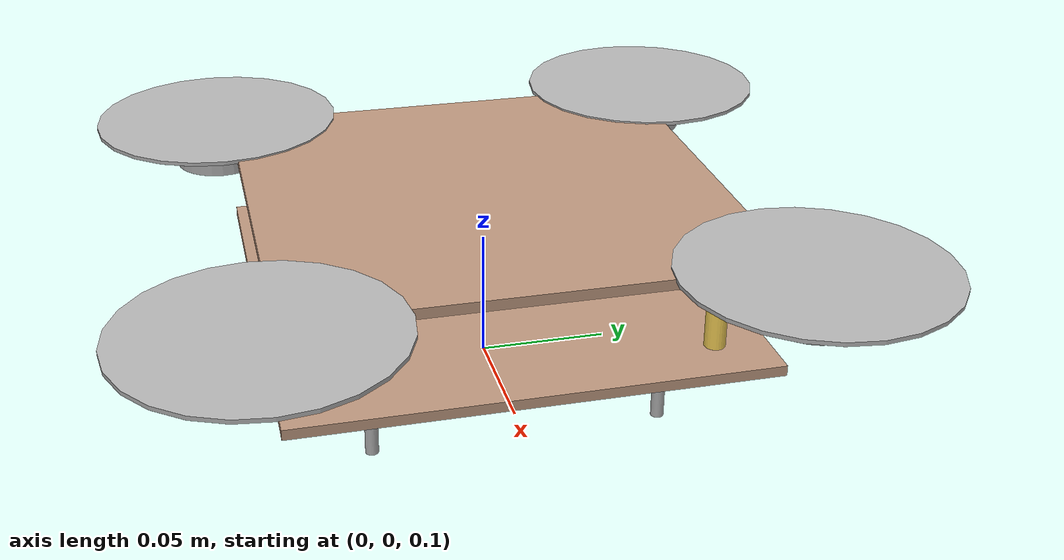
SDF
<?xml version="1.0" ?>
<sdf version="1.9">
  <model name="rex_quadcopter">
    <static>false</static>

    <!-- Main body link -->
    <link name="base_link">
      <pose>0 0 0.15 0 0 0</pose>

      <inertial>
        <mass>0.3</mass>
        <inertia>
          <ixx>0.001</ixx>
          <iyy>0.001</iyy>
          <izz>0.002</izz>
          <ixy>0</ixy>
          <ixz>0</ixz>
          <iyz>0</iyz>
        </inertia>
      </inertial>

      <!-- Disable gravity on the link (re-enable when you add rotors) -->
      <gravity>false</gravity>

      <!-- Simple collision box -->
      <collision name="body_collision">
        <geometry>
          <box>
            <size>0.15 0.15 0.05</size>
          </box>
        </geometry>
      </collision>

      <!-- ===================== FRAME (dual plates) ===================== -->
      <visual name="frame_top">
        <pose>0 0 0.020 0 0 0</pose>
        <geometry><box><size>0.18 0.18 0.004</size></box></geometry>
        <material>
          <ambient>0.65 0.55 0.45 1</ambient>
          <diffuse>0.75 0.60 0.50 1</diffuse>
          <specular>0.2 0.2 0.2 1</specular>
        </material>
      </visual>

      <visual name="frame_bottom">
        <pose>0 0 -0.020 0 0 0</pose>
        <geometry><box><size>0.18 0.18 0.004</size></box></geometry>
        <material>
          <ambient>0.65 0.55 0.45 1</ambient>
          <diffuse>0.75 0.60 0.50 1</diffuse>
          <specular>0.2 0.2 0.2 1</specular>
        </material>
      </visual>

      <!-- ===================== GOLD STANDOFFS ===================== -->
      <visual name="standoff_fr">
        <pose> 0.07  0.07 0 0 0 0</pose>
        <geometry><cylinder><radius>0.004</radius><length>0.040</length></cylinder></geometry>
        <material><ambient>0.9 0.8 0.3 1</ambient><diffuse>1.0 0.85 0.35 1</diffuse></material>
      </visual>
      <visual name="standoff_fl">
        <pose>-0.07  0.07 0 0 0 0</pose>
        <geometry><cylinder><radius>0.004</radius><length>0.040</length></cylinder></geometry>
        <material><ambient>0.9 0.8 0.3 1</ambient><diffuse>1.0 0.85 0.35 1</diffuse></material>
      </visual>
      <visual name="standoff_br">
        <pose> 0.07 -0.07 0 0 0 0</pose>
        <geometry><cylinder><radius>0.004</radius><length>0.040</length></cylinder></geometry>
        <material><ambient>0.9 0.8 0.3 1</ambient><diffuse>1.0 0.85 0.35 1</diffuse></material>
      </visual>
      <visual name="standoff_bl">
        <pose>-0.07 -0.07 0 0 0 0</pose>
        <geometry><cylinder><radius>0.004</radius><length>0.040</length></cylinder></geometry>
      </visual>

      <!-- ===================== THIN GOLD LEGS / PINS ===================== -->
      <visual name="leg_fr">
        <pose> 0.055  0.055 -0.040 0 0 0</pose>
        <geometry><cylinder><radius>0.0025</radius><length>0.030</length></cylinder></geometry>
      </visual>
      <visual name="leg_fl">
        <pose>-0.055  0.055 -0.040 0 0 0</pose>
        <geometry><cylinder><radius>0.0025</radius><length>0.030</length></cylinder></geometry>
      </visual>
      <visual name="leg_br">
        <pose> 0.055 -0.055 -0.040 0 0 0</pose>
        <geometry><cylinder><radius>0.0025</radius><length>0.030</length></cylinder></geometry>
      </visual>
      <visual name="leg_bl">
        <pose>-0.055 -0.055 -0.040 0 0 0</pose>
        <geometry><cylinder><radius>0.0025</radius><length>0.030</length></cylinder></geometry>
      </visual>

      <!-- ===================== MOTOR CANS ===================== -->
      <visual name="motor_fr">
        <pose> 0.095  0.095 0.012 0 0 0</pose>
        <geometry><cylinder><radius>0.018</radius><length>0.018</length></cylinder></geometry>
      </visual>
      <visual name="motor_fl">
        <pose>-0.095  0.095 0.012 0 0 0</pose>
        <geometry><cylinder><radius>0.018</radius><length>0.018</length></cylinder></geometry>
      </visual>
      <visual name="motor_br">
        <pose> 0.095 -0.095 0.012 0 0 0</pose>
        <geometry><cylinder><radius>0.018</radius><length>0.018</length></cylinder></geometry>
      </visual>
      <visual name="motor_bl">
        <pose>-0.095 -0.095 0.012 0 0 0</pose>
        <geometry><cylinder><radius>0.018</radius><length>0.018</length></cylinder></geometry>
      </visual>

      <!-- ===================== DARK PROPS ABOVE MOTORS ===================== -->
      <visual name="prop_fr">
        <pose> 0.095  0.095 0.022 0 0 0</pose>
        <geometry><cylinder><radius>0.050</radius><length>0.0015</length></cylinder></geometry>
      </visual>
      <visual name="prop_fl">
        <pose>-0.095  0.095 0.022 0 0 0</pose>
        <geometry><cylinder><radius>0.050</radius><length>0.0015</length></cylinder></geometry>
      </visual>
      <visual name="prop_br">
        <pose> 0.095 -0.095 0.022 0 0 0</pose>
        <geometry><cylinder><radius>0.050</radius><length>0.0015</length></cylinder></geometry>
      </visual>
      <visual name="prop_bl">
        <pose>-0.095 -0.095 0.022 0 0 0</pose>
        <geometry><cylinder><radius>0.050</radius><length>0.0015</length></cylinder></geometry>
      </visual>

      <!-- ===================== BLUE STATUS LED ===================== -->
      <visual name="status_led">
        <pose>0 0 -0.018 0 0 0</pose>
        <geometry><sphere><radius>0.006</radius></sphere></geometry>
      </visual>

      <!-- ===================== 8 RAY-BASED RANGE SENSORS ===================== -->
      <!-- Simple laser beams publishing LaserScan messages for debugging. -->
      <sensor name="tof_front" type="gpu_lidar">
        <pose>0.12 0 0 0 0 0</pose>
        <lidar>
          <scan>
            <horizontal>
              <samples>5</samples>
              <resolution>1</resolution>
              <min_angle>-0.5235987756</min_angle>
              <max_angle>0.5235987756</max_angle>
            </horizontal>
          </scan>
          <range>
            <min>0.05</min>
            <max>6.0</max>
            <resolution>0.001</resolution>
          </range>
        </lidar>
        <always_on>true</always_on>
        <update_rate>20</update_rate>
        <visualize>true</visualize>
        <topic>/world/playfield/model/robot/link/base_link/sensor/tof_front/scan</topic>
      </sensor>

      <sensor name="tof_front_right" type="gpu_lidar">
        <pose>0.085 0.085 0 0 0 0.7853981634</pose>
        <lidar>
          <scan>
            <horizontal>
              <samples>5</samples>
              <resolution>1</resolution>
              <min_angle>-0.5235987756</min_angle>
              <max_angle>0.5235987756</max_angle>
            </horizontal>
          </scan>
          <range>
            <min>0.05</min>
            <max>6.0</max>
            <resolution>0.001</resolution>
          </range>
        </lidar>
        <always_on>true</always_on>
        <update_rate>20</update_rate>
        <visualize>true</visualize>
        <topic>/world/playfield/model/robot/link/base_link/sensor/tof_front_right/scan</topic>
      </sensor>

      <sensor name="tof_right" type="gpu_lidar">
        <pose>0 0.12 0 0 0 1.5707963268</pose>
        <lidar>
          <scan>
            <horizontal>
              <samples>5</samples>
              <resolution>1</resolution>
              <min_angle>-0.5235987756</min_angle>
              <max_angle>0.5235987756</max_angle>
            </horizontal>
          </scan>
          <range>
            <min>0.05</min>
            <max>6.0</max>
            <resolution>0.001</resolution>
          </range>
        </lidar>
        <always_on>true</always_on>
        <update_rate>20</update_rate>
        <visualize>true</visualize>
        <topic>/world/playfield/model/robot/link/base_link/sensor/tof_right/scan</topic>
      </sensor>

      <sensor name="tof_back_right" type="gpu_lidar">
        <pose>-0.085 0.085 0 0 0 2.3561944902</pose>
        <lidar>
          <scan>
            <horizontal>
              <samples>5</samples>
              <resolution>1</resolution>
              <min_angle>-0.5235987756</min_angle>
              <max_angle>0.5235987756</max_angle>
            </horizontal>
          </scan>
          <range>
            <min>0.05</min>
            <max>6.0</max>
            <resolution>0.001</resolution>
          </range>
        </lidar>
        <always_on>true</always_on>
        <update_rate>20</update_rate>
        <visualize>true</visualize>
        <topic>/world/playfield/model/robot/link/base_link/sensor/tof_back_right/scan</topic>
      </sensor>

      <sensor name="tof_back" type="gpu_lidar">
        <pose>-0.12 0 0 0 0 3.1415926536</pose>
        <lidar>
          <scan>
            <horizontal>
              <samples>5</samples>
              <resolution>1</resolution>
              <min_angle>-0.5235987756</min_angle>
              <max_angle>0.5235987756</max_angle>
            </horizontal>
          </scan>
          <range>
            <min>0.05</min>
            <max>6.0</max>
            <resolution>0.001</resolution>
          </range>
        </lidar>
        <always_on>true</always_on>
        <update_rate>20</update_rate>
        <visualize>true</visualize>
        <topic>/world/playfield/model/robot/link/base_link/sensor/tof_back/scan</topic>
      </sensor>

      <sensor name="tof_back_left" type="gpu_lidar">
        <pose>-0.085 -0.085 0 0 0 -2.3561944902</pose>
        <lidar>
          <scan>
            <horizontal>
              <samples>5</samples>
              <resolution>1</resolution>
              <min_angle>-0.5235987756</min_angle>
              <max_angle>0.5235987756</max_angle>
            </horizontal>
          </scan>
          <range>
            <min>0.05</min>
            <max>6.0</max>
            <resolution>0.001</resolution>
          </range>
        </lidar>
        <always_on>true</always_on>
        <update_rate>20</update_rate>
        <visualize>true</visualize>
        <topic>/world/playfield/model/robot/link/base_link/sensor/tof_back_left/scan</topic>
      </sensor>

      <sensor name="tof_left" type="gpu_lidar">
        <pose>0 -0.12 0 0 0 -1.5707963268</pose>
        <lidar>
          <scan>
            <horizontal>
              <samples>5</samples>
              <resolution>1</resolution>
              <min_angle>-0.5235987756</min_angle>
              <max_angle>0.5235987756</max_angle>
            </horizontal>
          </scan>
          <range>
            <min>0.05</min>
            <max>6.0</max>
            <resolution>0.001</resolution>
          </range>
        </lidar>
        <always_on>true</always_on>
        <update_rate>20</update_rate>
        <visualize>true</visualize>
        <topic>/world/playfield/model/robot/link/base_link/sensor/tof_left/scan</topic>
      </sensor>

      <sensor name="tof_front_left" type="gpu_lidar">
        <pose>0.085 -0.085 0 0 0 -0.7853981634</pose>
        <lidar>
          <scan>
            <horizontal>
              <samples>5</samples>
              <resolution>1</resolution>
              <min_angle>-0.5235987756</min_angle>
              <max_angle>0.5235987756</max_angle>
            </horizontal>
          </scan>
          <range>
            <min>0.05</min>
            <max>6.0</max>
            <resolution>0.001</resolution>
          </range>
        </lidar>
        <always_on>true</always_on>
        <update_rate>20</update_rate>
        <visualize>true</visualize>
        <topic>/world/playfield/model/robot/link/base_link/sensor/tof_front_left/scan</topic>
      </sensor>

    </link>

    <!-- Velocity control and odometry plugins -->
    <plugin name="gz::sim::systems::VelocityControl" filename="gz-sim-velocity-control-system">
      <topic>/cmd_vel</topic>
      <use_world_frame>false</use_world_frame>
      <max_linear_velocity>3</max_linear_velocity>
      <max_angular_velocity>2</max_angular_velocity>
    </plugin>

    <plugin name="gz::sim::systems::OdometryPublisher" filename="gz-sim-odometry-publisher-system">
      <topic>/odom</topic>
      <frame_id>robot/odom</frame_id>
      <child_frame_id>robot/base_link</child_frame_id>
      <publish_tf>true</publish_tf>
    </plugin>

  </model>
</sdf>
